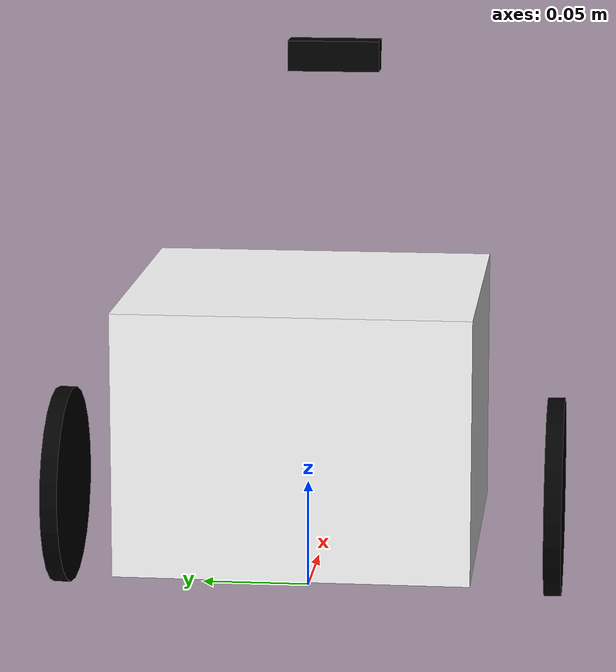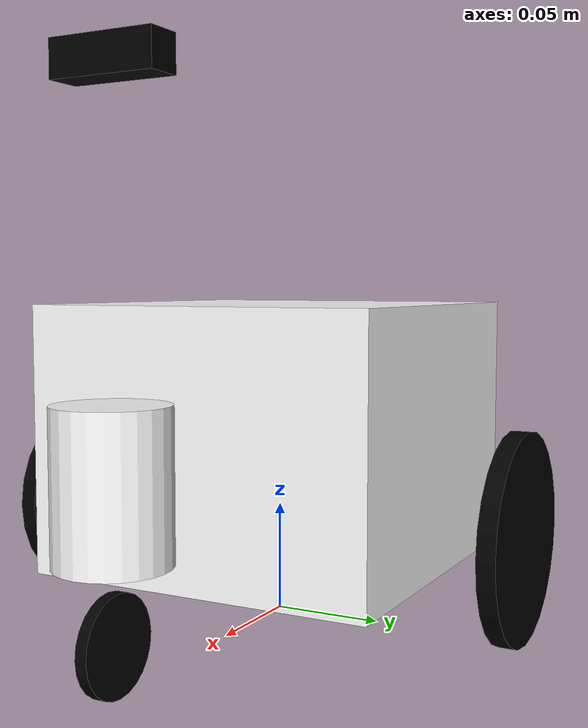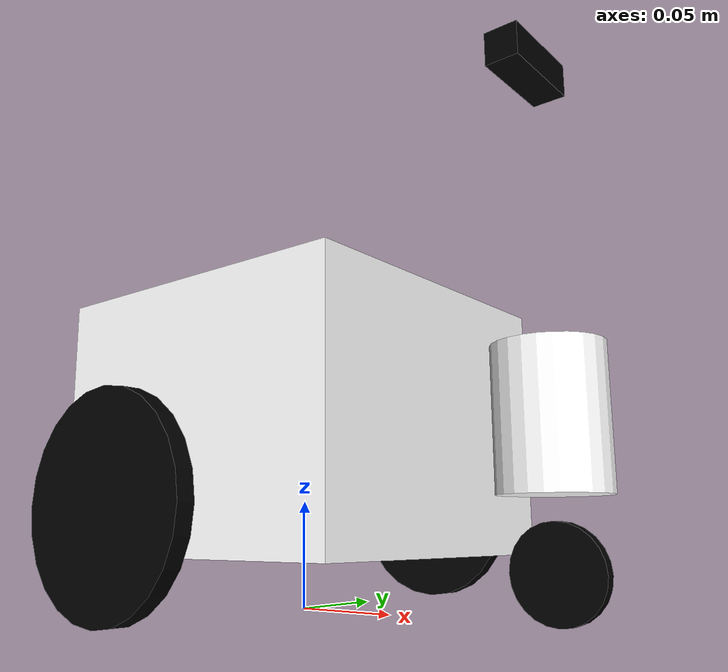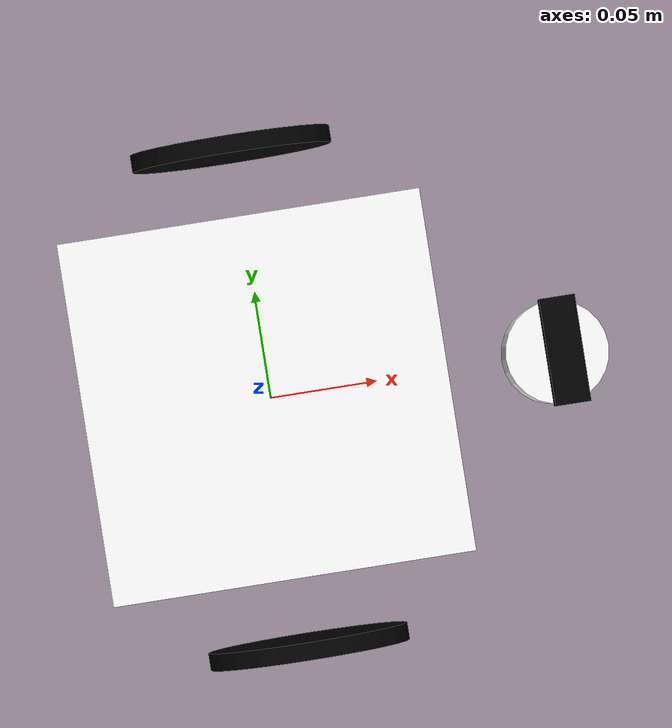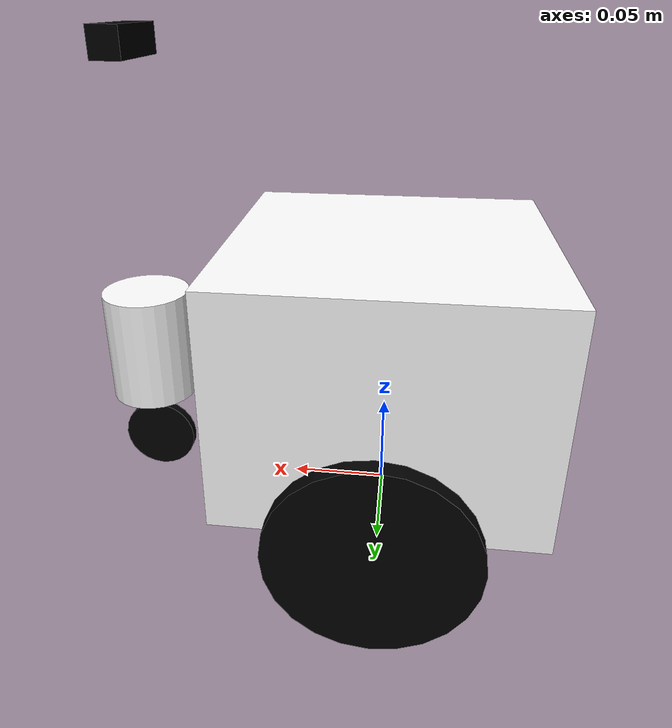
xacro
<?xml version="1.0" ?>
<!-- |    This document was autogenerated by xacro from umutbot.urdf                   | -->
<!-- |    EDITING THIS FILE BY HAND IS NOT RECOMMENDED                                 | -->
<robot name="test_robot">
  <link name="base_link">
    <visual>
      <geometry>
        <box size="0.16 0.16 0.12"/>
      </geometry>
      <origin rpy="0 0 0" xyz="0 0 0.085"/>
      <material name="white">
        <color rgba="1 1 1 1"/>
      </material>
    </visual>
  </link>
  <link name="lwheel">
    <visual>
      <geometry>
        <cylinder length="0.008" radius="0.046"/>
      </geometry>
      <origin rpy="0 0 0" xyz="0 0 0"/>
      <material name="black">
        <color rgba="0 0 0 1"/>
      </material>
    </visual>
  </link>
  <joint name="base_to_lwheel" type="fixed">
    <parent link="base_link"/>
    <child link="lwheel"/>
    <origin rpy="1.5708 0 0" xyz="0 0.115 0.046"/>
  </joint>
  <link name="rwheel">
    <visual>
      <geometry>
        <cylinder length="0.008" radius="0.046"/>
      </geometry>
      <origin rpy="0 0 0" xyz="0 0 0"/>
      <material name="black">
        <color rgba="0 0 0 1"/>
      </material>
    </visual>
  </link>
  <joint name="base_to_rwheel" type="fixed">
    <parent link="base_link"/>
    <child link="rwheel"/>
    <origin rpy="-1.5708 0 0" xyz="0 -0.115 0.046"/>
  </joint>
  <link name="fwheel_attach">
    <visual>
      <geometry>
        <cylinder length="0.060" radius="0.023"/>
      </geometry>
      <origin rpy="0 0 0" xyz="0.13 0 0.08"/>
      <material name="white">
        <color rgba="1 1 1 1"/>
      </material>
    </visual>
  </link>
  <joint name="base_to_fattach" type="fixed">
    <parent link="base_link"/>
    <child link="fwheel_attach"/>
    <origin rpy="0 0 0" xyz="0 0 0"/>
  </joint>
  <link name="fwheel">
    <visual>
      <geometry>
        <cylinder length="0.005" radius="0.020"/>
      </geometry>
      <origin rpy="1.578 0 0" xyz="0 0 0"/>
      <material name="black">
        <color rgba="0 0 0 1"/>
      </material>
    </visual>
  </link>
  <joint name="base_to_fwheel" type="fixed">
    <parent link="base_link"/>
    <child link="fwheel"/>
    <origin rpy="0 0 0" xyz="0.13 0 0.02"/>
  </joint>
  <link name="scanner">
    <visual>
      <geometry>
        <box size="0.015 0.045 0.015"/>
      </geometry>
      <origin rpy="0 0 0" xyz="0.022 0 0.015"/>
      <material name="black">
        <color rgba="0 0 0 1"/>
      </material>
    </visual>
  </link>
  <joint name="base_to_scanner" type="fixed">
    <parent link="base_link"/>
    <child link="scanner"/>
    <origin rpy="0 0 0" xyz="0.105 0 0.22"/>
  </joint>
</robot>
